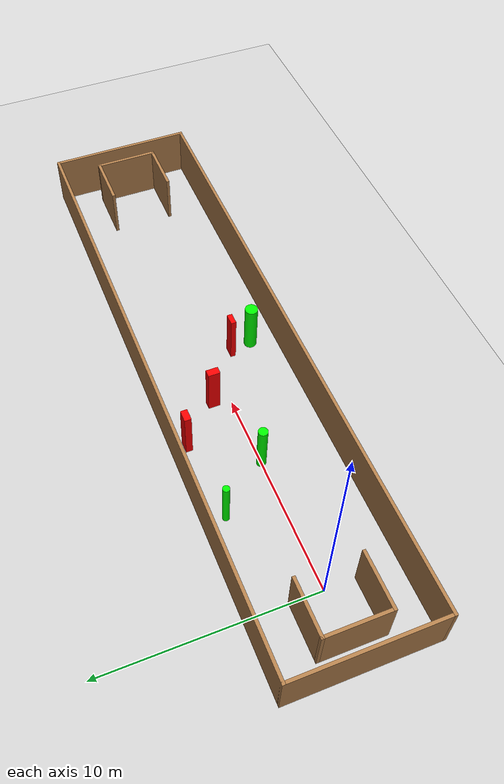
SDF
<sdf version="1.7">
 <world name="default">
  <light name="sun" type="directional">
   <pose>0 0 10 0 -0 0</pose>
   <diffuse>0.8 0.8 0.8 1</diffuse>
   <specular>0.2 0.2 0.2 1</specular>
   <attenuation>
    <range>1000</range>
    <constant>0.9</constant>
    <linear>0.01</linear>
    <quadratic>0.001</quadratic>
   </attenuation>
   <direction>-0.5 0.1 -0.9</direction>
   <spot><inner_angle>0</inner_angle><outer_angle>0</outer_angle><falloff>0</falloff></spot>
  </light>
  <model name="ground_plane">
   <static>1</static>
   <link name="link">
    <collision name="collision">
     <geometry><plane><normal>0 0 1</normal><size>100 100</size></plane></geometry>
     <surface>
      <contact><collide_bitmask>65535</collide_bitmask></contact>
      <friction><ode><mu>100</mu><mu2>50</mu2></ode></friction>
     </surface>
    </collision>
    <visual name="visual">
     <cast_shadows>0</cast_shadows>
     <geometry><plane><normal>0 0 1</normal><size>100 100</size></plane></geometry>
     <material>
      <script><uri>file://media/materials/scripts/gazebo.material</uri><name>Gazebo/Grey</name></script>
     </material>
    </visual>
   </link>
  </model>
  <gravity>0 0 -9.8</gravity>
  <magnetic_field>6e-06 2.3e-05 -4.2e-05</magnetic_field>
  <atmosphere type="adiabatic"/>
  <physics type="ode">
   <max_step_size>0.001</max_step_size>
   <real_time_factor>1</real_time_factor>
   <real_time_update_rate>1000</real_time_update_rate>
  </physics>
  <scene><ambient>0.4 0.4 0.4 1</ambient><background>0.7 0.7 0.7 1</background><shadows>1</shadows></scene>
  <spherical_coordinates>
   <surface_model>EARTH_WGS84</surface_model>
   <latitude_deg>0</latitude_deg>
   <longitude_deg>0</longitude_deg>
   <elevation>0</elevation>
   <heading_deg>0</heading_deg>
  </spherical_coordinates>
  <model name="my_base_walls">
   <link name="Wall_0">
    <collision name="Wall_0_Collision">
     <geometry><box><size>7.15 0.15 2.5</size></box></geometry>
     <pose>0 0 1.25 0 -0 0</pose>
    </collision>
    <visual name="Wall_0_Visual">
     <pose>0 0 1.25 0 -0 0</pose>
     <geometry><box><size>7.15 0.15 2.5</size></box></geometry>
     <material>
      <script><uri>file://media/materials/scripts/gazebo.material</uri><name>Gazebo/Wood</name></script>
      <ambient>1 1 1 1</ambient>
     </material>
     <meta><layer>0</layer></meta>
    </visual>
    <pose>-15 0 0 0 -0 1.5708</pose>
   </link>
   <link name="Wall_10">
    <collision name="Wall_10_Collision">
     <geometry><box><size>2.65 0.15 2.5</size></box></geometry>
     <pose>0 0 1.25 0 -0 0</pose>
    </collision>
    <visual name="Wall_10_Visual">
     <pose>0 0 1.25 0 -0 0</pose>
     <geometry><box><size>2.65 0.15 2.5</size></box></geometry>
     <material>
      <script><uri>file://media/materials/scripts/gazebo.material</uri><name>Gazebo/Wood</name></script>
      <ambient>1 1 1 1</ambient>
     </material>
     <meta><layer>0</layer></meta>
    </visual>
    <pose>-12.75 -1.5 0 0 -0 0</pose>
   </link>
   <link name="Wall_12">
    <collision name="Wall_12_Collision">
     <geometry><box><size>2.65 0.15 2.5</size></box></geometry>
     <pose>0 0 1.25 0 -0 0</pose>
    </collision>
    <visual name="Wall_12_Visual">
     <pose>0 0 1.25 0 -0 0</pose>
     <geometry><box><size>2.65 0.15 2.5</size></box></geometry>
     <material>
      <script><uri>file://media/materials/scripts/gazebo.material</uri><name>Gazebo/Wood</name></script>
      <ambient>1 1 1 1</ambient>
     </material>
     <meta><layer>0</layer></meta>
    </visual>
    <pose>-12.75 1.5 0 0 -0 0</pose>
   </link>
   <link name="Wall_14">
    <collision name="Wall_14_Collision">
     <geometry><box><size>3.15 0.15 2.5</size></box></geometry>
     <pose>0 0 1.25 0 -0 0</pose>
    </collision>
    <visual name="Wall_14_Visual">
     <pose>0 0 1.25 0 -0 0</pose>
     <geometry><box><size>3.15 0.15 2.5</size></box></geometry>
     <material>
      <script><uri>file://media/materials/scripts/gazebo.material</uri><name>Gazebo/Wood</name></script>
      <ambient>1 1 1 1</ambient>
     </material>
     <meta><layer>0</layer></meta>
    </visual>
    <pose>14 0 0 0 -0 -1.5708</pose>
   </link>
   <link name="Wall_15">
    <collision name="Wall_15_Collision">
     <geometry><box><size>2.65 0.15 2.5</size></box></geometry>
     <pose>0 0 1.25 0 -0 0</pose>
    </collision>
    <visual name="Wall_15_Visual">
     <pose>0 0 1.25 0 -0 0</pose>
     <geometry><box><size>2.65 0.15 2.5</size></box></geometry>
     <material>
      <script><uri>file://media/materials/scripts/gazebo.material</uri><name>Gazebo/Wood</name></script>
      <ambient>1 1 1 1</ambient>
     </material>
     <meta><layer>0</layer></meta>
    </visual>
    <pose>12.75 -1.5 0 0 -0 3.14159</pose>
   </link>
   <link name="Wall_17">
    <collision name="Wall_17_Collision">
     <geometry><box><size>2.65 0.15 2.5</size></box></geometry>
     <pose>0 0 1.25 0 -0 0</pose>
    </collision>
    <visual name="Wall_17_Visual">
     <pose>0 0 1.25 0 -0 0</pose>
     <geometry><box><size>2.65 0.15 2.5</size></box></geometry>
     <material>
      <script><uri>file://media/materials/scripts/gazebo.material</uri><name>Gazebo/Wood</name></script>
      <ambient>1 1 1 1</ambient>
     </material>
     <meta><layer>0</layer></meta>
    </visual>
    <pose>12.75 1.5 0 0 -0 3.14159</pose>
   </link>
   <link name="Wall_2">
    <collision name="Wall_2_Collision">
     <geometry><box><size>30.15 0.15 2.5</size></box></geometry>
     <pose>0 0 1.25 0 -0 0</pose>
    </collision>
    <visual name="Wall_2_Visual">
     <pose>0 0 1.25 0 -0 0</pose>
     <geometry><box><size>30.15 0.15 2.5</size></box></geometry>
     <material>
      <script><uri>file://media/materials/scripts/gazebo.material</uri><name>Gazebo/Wood</name></script>
      <ambient>1 1 1 1</ambient>
     </material>
     <meta><layer>0</layer></meta>
    </visual>
    <pose>-0 -3.5 0 0 -0 0</pose>
   </link>
   <link name="Wall_4">
    <collision name="Wall_4_Collision">
     <geometry><box><size>30.15 0.15 2.5</size></box></geometry>
     <pose>0 0 1.25 0 -0 0</pose>
    </collision>
    <visual name="Wall_4_Visual">
     <pose>0 0 1.25 0 -0 0</pose>
     <geometry><box><size>30.15 0.15 2.5</size></box></geometry>
     <material>
      <script><uri>file://media/materials/scripts/gazebo.material</uri><name>Gazebo/Wood</name></script>
      <ambient>1 1 1 1</ambient>
     </material>
     <meta><layer>0</layer></meta>
    </visual>
    <pose>-0 3.5 0 0 -0 0</pose>
   </link>
   <link name="Wall_6">
    <collision name="Wall_6_Collision">
     <geometry><box><size>7.15 0.15 2.5</size></box></geometry>
     <pose>0 0 1.25 0 -0 0</pose>
    </collision>
    <visual name="Wall_6_Visual">
     <pose>0 0 1.25 0 -0 0</pose>
     <geometry><box><size>7.15 0.15 2.5</size></box></geometry>
     <material>
      <script><uri>file://media/materials/scripts/gazebo.material</uri><name>Gazebo/Wood</name></script>
      <ambient>1 1 1 1</ambient>
     </material>
     <meta><layer>0</layer></meta>
    </visual>
    <pose>15 0 0 0 -0 -1.5708</pose>
   </link>
   <link name="Wall_9">
    <collision name="Wall_9_Collision">
     <geometry><box><size>3.15 0.15 2.5</size></box></geometry>
     <pose>0 0 1.25 0 -0 0</pose>
    </collision>
    <visual name="Wall_9_Visual">
     <pose>0 0 1.25 0 -0 0</pose>
     <geometry><box><size>3.15 0.15 2.5</size></box></geometry>
     <material>
      <script><uri>file://media/materials/scripts/gazebo.material</uri><name>Gazebo/Wood</name></script>
      <ambient>1 1 1 1</ambient>
     </material>
     <meta><layer>0</layer></meta>
    </visual>
    <pose>-14 0 0 0 -0 -1.5708</pose>
   </link>
   <static>1</static>
   <pose>11.5 0 0 0 -0 0</pose>
  </model>
  <model name="cylinder1">
   <static>1</static>
   <link name="link">
    <inertial>
     <mass>1</mass>
     <inertia><ixx>0.5</ixx><ixy>0</ixy><ixz>0</ixz><iyy>0.5</iyy><iyz>0</iyz><izz>1</izz></inertia>
    </inertial>
    <collision name="collision">
     <geometry><cylinder><radius>0.158735501304195</radius><length>2.5</length></cylinder></geometry>
    </collision>
    <visual name="visual">
     <geometry><cylinder><radius>0.158735501304195</radius><length>2.5</length></cylinder></geometry>
     <material>
      <ambient>0 1 0 1</ambient>
      <diffuse>0 1 0 1</diffuse>
      <specular>0.1 0.1 0.1 1</specular>
      <emissive>0 0 0 0</emissive>
     </material>
    </visual>
   </link>
   <pose>4.535606528718368 2.479998900224854 1.25 0 0 0</pose>
  </model>
  <model name="cylinder2">
   <static>1</static>
   <link name="link">
    <inertial>
     <mass>1</mass>
     <inertia><ixx>0.5</ixx><ixy>0</ixy><ixz>0</ixz><iyy>0.5</iyy><iyz>0</iyz><izz>1</izz></inertia>
    </inertial>
    <collision name="collision">
     <geometry><cylinder><radius>0.30887951374497635</radius><length>2.5</length></cylinder></geometry>
    </collision>
    <visual name="visual">
     <geometry><cylinder><radius>0.30887951374497635</radius><length>2.5</length></cylinder></geometry>
     <material>
      <ambient>0 1 0 1</ambient>
      <diffuse>0 1 0 1</diffuse>
      <specular>0.1 0.1 0.1 1</specular>
      <emissive>0 0 0 0</emissive>
     </material>
    </visual>
   </link>
   <pose>13.052471809414635 -2.1812601452801985 1.25 0 0 0</pose>
  </model>
  <model name="cylinder3">
   <static>1</static>
   <link name="link">
    <inertial>
     <mass>1</mass>
     <inertia><ixx>0.5</ixx><ixy>0</ixy><ixz>0</ixz><iyy>0.5</iyy><iyz>0</iyz><izz>1</izz></inertia>
    </inertial>
    <collision name="collision">
     <geometry><cylinder><radius>0.2247519115378199</radius><length>2.5</length></cylinder></geometry>
    </collision>
    <visual name="visual">
     <geometry><cylinder><radius>0.2247519115378199</radius><length>2.5</length></cylinder></geometry>
     <material>
      <ambient>0 1 0 1</ambient>
      <diffuse>0 1 0 1</diffuse>
      <specular>0.1 0.1 0.1 1</specular>
      <emissive>0 0 0 0</emissive>
     </material>
    </visual>
   </link>
   <pose>6.53262110555044 -0.002909400624065306 1.25 0 0 0</pose>
  </model>
  <model name="box1">
   <static>1</static>
   <link name="link">
    <inertial>
     <mass>1</mass>
     <inertia><ixx>0.083</ixx><ixy>0</ixy><ixz>0</ixz><iyy>0.083</iyy><iyz>0</iyz><izz>0.083</izz></inertia>
    </inertial>
    <collision name="collision">
     <geometry><box><size>0.5525632292030386 0.31859682641766995 2.5</size></box></geometry>
    </collision>
    <visual name="visual">
     <geometry><box><size>0.5525632292030386 0.31859682641766995 2.5</size></box></geometry>
     <material>
      <ambient>1 0 0 1</ambient>
      <diffuse>1 0 0 1</diffuse>
      <specular>0.1 0.1 0.1 1</specular>
      <emissive>0 0 0 0</emissive>
     </material>
    </visual>
    <sensor name="my_contact" type="contact">
     <contact><collision>box_collision</collision><topic>__default_topic__</topic></contact>
    </sensor>
   </link>
   <pose>8.517822766293019 2.7724022129423265 1.25 0 0 0</pose>
  </model>
  <model name="box2">
   <static>1</static>
   <link name="link">
    <inertial>
     <mass>1</mass>
     <inertia><ixx>0.083</ixx><ixy>0</ixy><ixz>0</ixz><iyy>0.083</iyy><iyz>0</iyz><izz>0.083</izz></inertia>
    </inertial>
    <collision name="collision">
     <geometry><box><size>0.5452118082973842 0.25096069950118666 2.5</size></box></geometry>
    </collision>
    <visual name="visual">
     <geometry><box><size>0.5452118082973842 0.25096069950118666 2.5</size></box></geometry>
     <material>
      <ambient>1 0 0 1</ambient>
      <diffuse>1 0 0 1</diffuse>
      <specular>0.1 0.1 0.1 1</specular>
      <emissive>0 0 0 0</emissive>
     </material>
    </visual>
    <sensor name="my_contact" type="contact">
     <contact><collision>box_collision</collision><topic>__default_topic__</topic></contact>
    </sensor>
   </link>
   <pose>12.841295538903713 -1.0882891054528905 1.25 0 0 0</pose>
  </model>
  <model name="box3">
   <static>1</static>
   <link name="link">
    <inertial>
     <mass>1</mass>
     <inertia><ixx>0.083</ixx><ixy>0</ixy><ixz>0</ixz><iyy>0.083</iyy><iyz>0</iyz><izz>0.083</izz></inertia>
    </inertial>
    <collision name="collision">
     <geometry><box><size>0.34803449709104617 0.5738685424049109 2.5</size></box></geometry>
    </collision>
    <visual name="visual">
     <geometry><box><size>0.34803449709104617 0.5738685424049109 2.5</size></box></geometry>
     <material>
      <ambient>1 0 0 1</ambient>
      <diffuse>1 0 0 1</diffuse>
      <specular>0.1 0.1 0.1 1</specular>
      <emissive>0 0 0 0</emissive>
     </material>
    </visual>
    <sensor name="my_contact" type="contact">
     <contact><collision>box_collision</collision><topic>__default_topic__</topic></contact>
    </sensor>
   </link>
   <pose>10.277343069121722 0.8357373156868819 1.25 0 0 0</pose>
  </model>
 </world>
</sdf>
